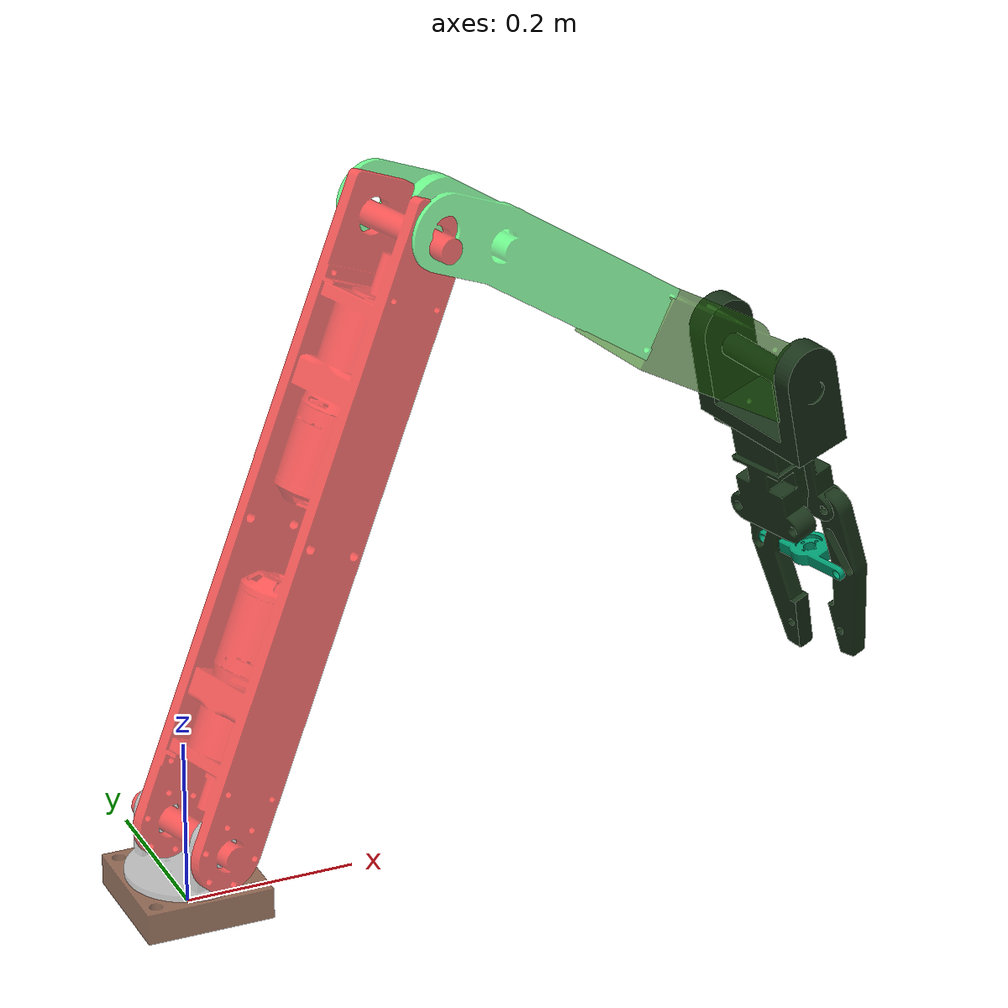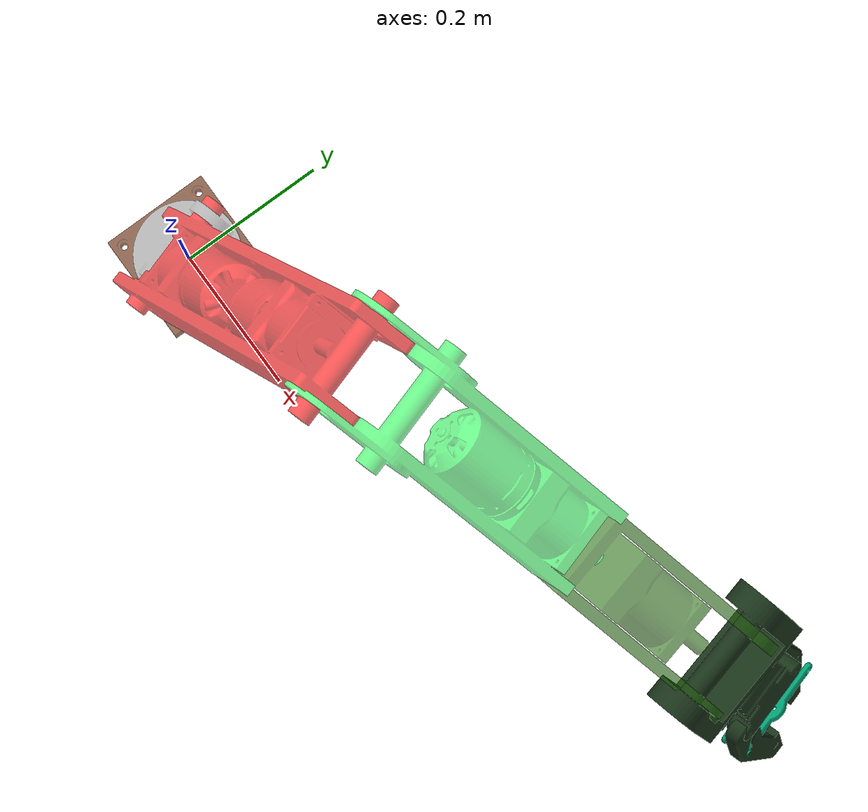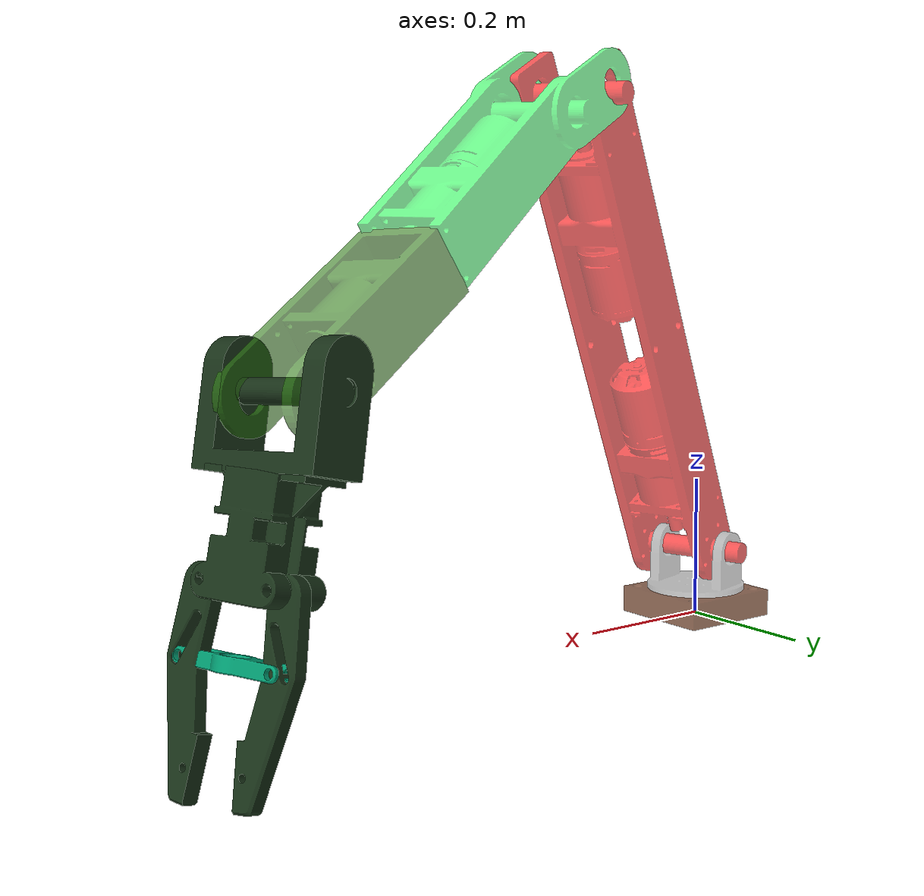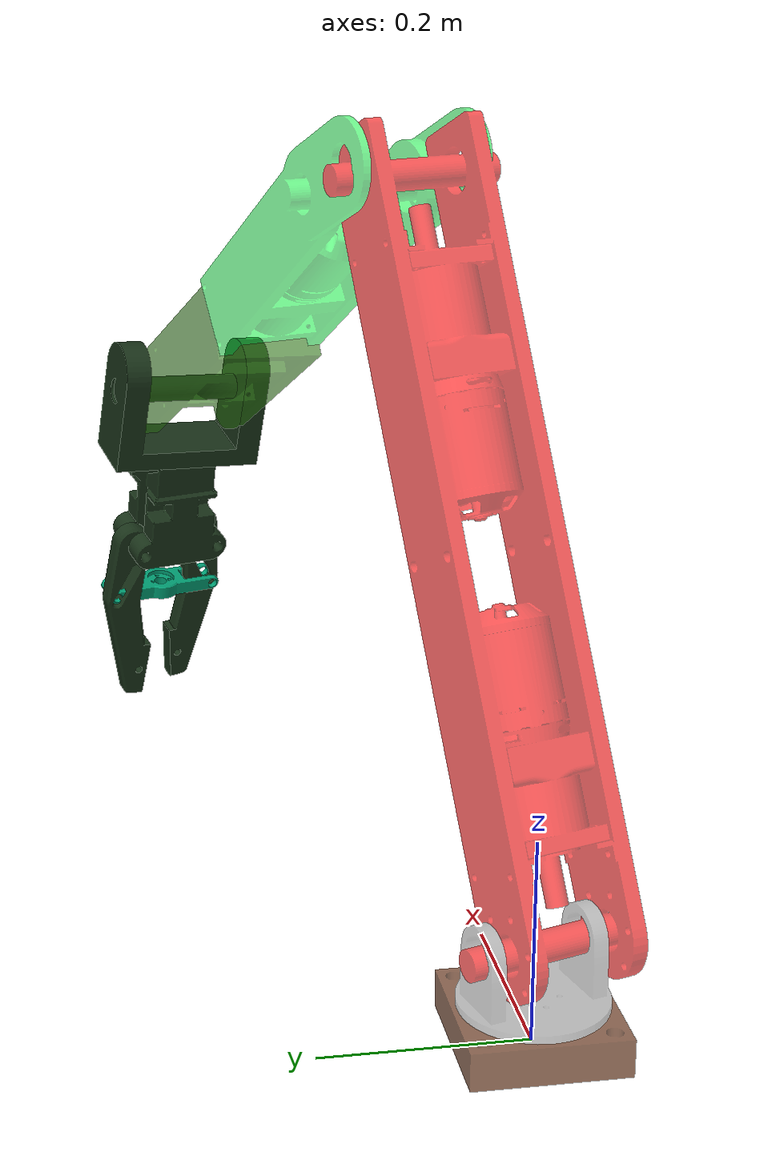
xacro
<?xml version = "1.0"?>

<robot name="ixnaminki_olinki_arm" xmlns:xacro="http://www.ros.org/wiki/xacro">

    <xacro:include filename="$(find ixnaminki2_description)/urdf/arm_gazebo.xacro"/>
    <xacro:include filename="$(find ixnaminki2_description)/urdf/control_brazo.xacro"/>

    <xacro:property name="PI" value="3.14159265359"/>
    <xacro:property name="effort" value="30"/>
    <xacro:property name="velocity" value="5"/>
    <xacro:property name="escala" value="0.0015 0.0015 0.0015"/>
    <xacro:property name="esc" value="0.0015"/>
    <xacro:property name="Z" value="${0.0015/0.004}"/>

    <xacro:macro name="default_transmission" params="number">
        <transmission name="transmission_${number}">
            <plugin>transmission_interface/SimpleTransmission</plugin>
            <joint name="joint_${number}" role="joint_${number}">
                <mechanicalReduction>1.0</mechanicalReduction>
                <hardwareInterface>hardware_interface/PositionJointInterface</hardwareInterface>
            </joint>
            <actuator name="motor_${number}" role="actuator_${number}">
                <mechanicalReduction>1.0</mechanicalReduction>
                <hardwareInterface>hardware_interface/PositionJointInterface</hardwareInterface>
            </actuator>
        </transmission>
    </xacro:macro>

    <xacro:macro name="default_inertial" params="mass">
        <inertial>
            <origin xyz="0.0 0.0 0.0" rpy="0.0 0.0 0.0"/>
            <mass value="${mass}"/>
            <inertia ixx="0.0" ixy="0.0" ixz="0.0"
                     iyy="0.0" iyz="0.0"
                     izz="0.0"/>
        </inertial>
    </xacro:macro>

    <link name="world"/>

    <!-- CUERPO -->

    <link name="base_link">
        <xacro:default_inertial mass="5.0"/>
        <visual>
            <origin xyz="${-esc*50} ${esc*50} 0.0" rpy="1.570795 0.0 0.0"/>
            <geometry>
                <mesh filename="package://ixnaminki2_description/3DModels/BRAZO/Base.STL" scale="${escala}"/>
            </geometry>
            <material name="base00">
                <color rgba="0.5 0.3 0.2 0.8"/>
            </material>
        </visual>
        <collision>
            <origin xyz="${-esc*50} ${esc*50} 0.0" rpy="1.570795 0.0 0.0"/>
            <geometry>
                <mesh filename="package://ixnaminki2_description/3DModels/BRAZO/Base.STL" scale="${escala}"/>
            </geometry>
        </collision>
    </link>

    <link name="rotative_base">
        <xacro:default_inertial mass="5.0"/>
        <visual>
            <origin xyz="${-esc*47.5} ${esc*47.5} 0.0" rpy="1.570795 0.0 0.0"/>
            <geometry>
                <mesh filename="package://ixnaminki2_description/3DModels/BRAZO/RotBase.STL" scale="${escala}"/>
            </geometry>
            <material name="base01">
                <color rgba="0.5 0.5 0.5 0.5"/>
            </material>
        </visual>
        <collision>
            <origin xyz="${-esc*47.5} ${esc*47.5} 0.0" rpy="1.570795 0.0 0.0"/>
            <geometry>
                <mesh filename="package://ixnaminki2_description/3DModels/BRAZO/RotBase.STL" scale="${escala}"/>
            </geometry>
        </collision>
    </link>

    <link name="lower_arm">
        <xacro:default_inertial mass="5.0"/>
        <visual>
            <origin xyz="${-esc*12} ${esc*100} ${-esc*75}" rpy="1.570795 0.0 -0.27"/>
            <geometry>
                <mesh filename="package://ixnaminki2_description/3DModels/BRAZO/LowerArm.STL" scale="${escala}"/>
            </geometry>
            <material name="base02">
                <color rgba="1.0 0.1 0.1 0.7"/>
            </material>
        </visual>
        <collision>
            <origin xyz="${-esc*33} ${esc*100} ${esc*0}" rpy="1.570795 0.0 -0.27"/>
            <geometry>
                <mesh filename="package://ixnaminki2_description/3DModels/BRAZO/LowerArm.STL" scale="${escala}"/>
            </geometry>
        </collision>
    </link>

    <link name="upper_arm">
        <xacro:default_inertial mass="5.0"/>
        <visual>
            <origin xyz="${-esc*213.35} ${esc*133.75} ${-esc*472.7}" rpy="1.570795 0.0 -0.27"/>
            <geometry>
                <mesh filename="package://ixnaminki2_description/3DModels/BRAZO/UpperArm.STL" scale="${escala}"/>
            </geometry>
            <material name="base03">
                <color rgba="0.1 1.0 0.3 0.6"/>
            </material>
        </visual>
        <collision>
            <origin xyz="${-esc*213.35} ${esc*133.75} ${-esc*472.7}" rpy="1.570795 0.0 -0.27"/>
            <geometry>
                <mesh filename="package://ixnaminki2_description/3DModels/BRAZO/UpperArm.STL" scale="${escala}"/>
            </geometry>
        </collision>
    </link>

    <link name="rotative_arm">
        <xacro:default_inertial mass="5.0"/>
        <visual>
            <origin xyz="${-esc*113.8} ${-esc*515.0} ${-esc*170.0}" rpy="0.0 -0.25 0.59"/>
            <geometry>
                <mesh filename="package://ixnaminki2_description/3DModels/BRAZO/RotativeArm.STL" scale="${escala}"/>
            </geometry>
            <material name="base04">
                <color rgba="0.2 0.5 0.1 0.65"/>
            </material>
        </visual>
        <collision>
            <origin xyz="${-esc*113.8} ${-esc*515.0} ${-esc*170.0}" rpy="0.0 -0.25 0.59"/>
            <geometry>
                <mesh filename="package://ixnaminki2_description/3DModels/BRAZO/RotativeArm.STL" scale="${escala}"/>
            </geometry>
        </collision>
    </link>

    <link name="wrist">
        <xacro:default_inertial mass="1.0"/>
        <visual>
            <origin xyz="${-esc*280} ${-esc*510.0} ${-esc*200.0}" rpy="0.0 -0.25 0.6"/>
            <geometry>
                <mesh filename="package://ixnaminki2_description/3DModels/BRAZO/Wrist.STL" scale="${escala}"/>
            </geometry>
            <material name="base05">
                <color rgba="0.1 0.2 0.1 1"/>
            </material>
        </visual>
        <collision>
            <origin xyz="${-esc*297.72} ${-esc*510.0} ${-esc*200.0}" rpy="0.0 -0.25 0.6"/>
            <geometry>
                <mesh filename="package://ixnaminki2_description/3DModels/BRAZO/Wrist.STL" scale="${escala}"/>
            </geometry>
        </collision>
    </link>

    <link name="gripper_base">
        <xacro:default_inertial mass="1.0"/>
        <visual>
            <origin xyz="${esc*0} ${-esc*47.5} ${esc*17}" rpy="${PI} 0.0 1.570795"/>
            <geometry>
                <mesh filename="package://ixnaminki2_description/3DModels/BRAZO/gripperFixed_.STL" scale="${escala}"/>
            </geometry>
            <material name="base05"/>
        </visual>
        <collision>
            <origin xyz="${esc*0} ${-esc*47.5} ${esc*17}" rpy="${PI} 0.0 1.570795"/>
            <geometry>
                <mesh filename="package://ixnaminki2_description/3DModels/BRAZO/gripperFixed_.STL" scale="${escala}"/>
            </geometry>
        </collision>
    </link>

    <link name="link_fingerL">
        <xacro:default_inertial mass="1.0"/>
        <visual>
            <origin xyz="${-esc*13.5} ${esc*30.0} 0.0" rpy="0.0 0.0 ${-PI/2}"/>
            <geometry>
                <mesh filename="package://ixnaminki2_description/3DModels/BRAZO/Assem1.STL" scale="${escala}"/>
            </geometry>
            <material name="base05"/>
        </visual>
        <collision>
            <origin xyz="${-esc*13.5} ${esc*30.0} 0.0" rpy="0.0 0.0 ${-PI/2}"/>
            <geometry>
                <mesh filename="package://ixnaminki2_description/3DModels/BRAZO/Assem1.STL" scale="${escala}"/>
            </geometry>
        </collision>
    </link>

    <link name="link_fingerR">
        <xacro:default_inertial mass="1.0"/>
        <visual>
            <origin xyz="${-esc*13.5} ${-esc*30.0} 0.0" rpy="0.0 ${PI} ${-PI/2}"/>
            <geometry>
                <mesh filename="package://ixnaminki2_description/3DModels/BRAZO/Assem1.STL" scale="${escala}"/>
            </geometry>
            <material name="base05"/>
        </visual>
        <collision>
            <origin xyz="${-esc*13.5} ${esc*30.0} 0.0" rpy="0.0 0.0 ${-PI/2}"/>
            <geometry>
                <mesh filename="package://ixnaminki2_description/3DModels/BRAZO/Assem1.STL" scale="${escala}"/>
            </geometry>
        </collision>
    </link>

    <link name="barra">
        <xacro:default_inertial mass = "1.0"/>
        <visual>
            <origin xyz="0 ${-esc*49} ${-esc*15}" rpy="0 0 ${PI/2}"/>
            <geometry>
                <mesh filename="package://ixnaminki2_description/3DModels/BRAZO/BARRA_CENTRAL.STL" scale="${escala}"/>
            </geometry>
            <material name="base06">
                <texture filename="package://ixnaminki2_description/3DModels/plata-viejo.jpg"/>
            </material>
        </visual>
        <collision>
            <origin xyz="0 ${-esc*49} 0" rpy="0 0 ${PI/2}"/>
            <geometry>
                <mesh filename="package://ixnaminki2_description/3DModels/BRAZO/BARRA_CENTRAL.STL" scale="${escala}"/>
            </geometry>
        </collision>
    </link>

<!-- JOINTS  -->

    <joint name="virtual_joint" type="fixed">
        <parent link="world"/>
        <child link="base_link"/>
        <origin xyz="0 0 0" rpy="0 0 0"/>
    </joint>
    <joint name="joint_base_rot" type="revolute">
        <parent link="base_link"/>
        <child link="rotative_base"/>
        <origin xyz="0.0 0.0 0.0" rpy="0.0 0.0 0.0"/>
        <axis xyz="0 0 1"/>
        <limit lower="-3.0" upper="3.0" effort="1.0" velocity="5.0"/>
    </joint>

    <joint name="joint_lower" type="revolute">
        <parent link="rotative_base"/>
        <child link="lower_arm"/>
        <origin xyz="0.0 0.0 ${esc*74}" rpy="0.0 0.0 0.3"/>
        <axis xyz="0 1 0"/>
        <limit lower="-1.7" upper="1.3" effort="1.0" velocity="5.0"/>
    </joint>

    <joint name="joint_upper" type="revolute">
        <parent link="lower_arm"/>
        <child link="upper_arm"/>
        <origin xyz="${esc*255.14} 0.0 ${esc*405.5}" rpy="0.0 0.0 0.0"/>
        <axis xyz="0 1 0"/>
        <limit lower="-2.0" upper="1.1" effort="1.0" velocity="5.0"/>
    </joint>
    <joint name="joint_rotative" type="revolute">
        <parent link="upper_arm"/>
        <child link="rotative_arm"/>
        <origin xyz="${esc*163.92} ${-esc*15} ${-esc*114.57}" rpy="0.0 0.53 0.0"/>
        <axis xyz="1 0 0"/>
        <limit lower="-3.0" upper="3.0" effort="1.0" velocity="5.0"/>
    </joint>

    <joint name="joint_wrist" type="revolute">
        <parent link="rotative_arm"/>
        <child link="wrist"/>
        <origin xyz="${esc*176} 0 0" rpy="0 0 0"/>
        <axis xyz="0 1 0"/>
        <limit lower="-2.5" upper="1.0" effort="1.0" velocity="5.0"/>
    </joint>

    <joint name="joint_wrist_gripper" type="fixed">
        <parent link="wrist"/>
        <child link="gripper_base"/>
        <origin xyz="${esc*47.97} ${-esc*0} ${-esc*30}" rpy="0 0.8 0.0"/>
    </joint>

    <joint name="joint_finger" type="fixed"> <!--type="revolute"-->
        <parent link="gripper_base"/>
        <child link="link_fingerL"/>
        <origin xyz="${esc*81} ${-esc*30} 0" rpy="0 0 0"/>
    </joint>

    <joint name ="joint_finger_mimic" type="fixed"> <!--type="revolute"-->
        <parent link="gripper_base"/>
        <child link = "link_fingerR"/>
        <origin xyz="${esc*81} ${esc*30} 0" rpy="0 0 0"/>
    </joint>

    <joint name="joint_barra"  type="fixed"> <!--type="prismatic"-->
        <parent link="gripper_base"/>
        <child link="barra"/>
        <origin xyz="${esc*142.5} 0 0" rpy="0 0 0"/>
    </joint>

    <xacro:default_transmission number="base_rot"/>
    <xacro:default_transmission number="lower"/>
    <xacro:default_transmission number="upper"/>
    <xacro:default_transmission number="rotative"/>
    <xacro:default_transmission number="wrist"/>

</robot>
